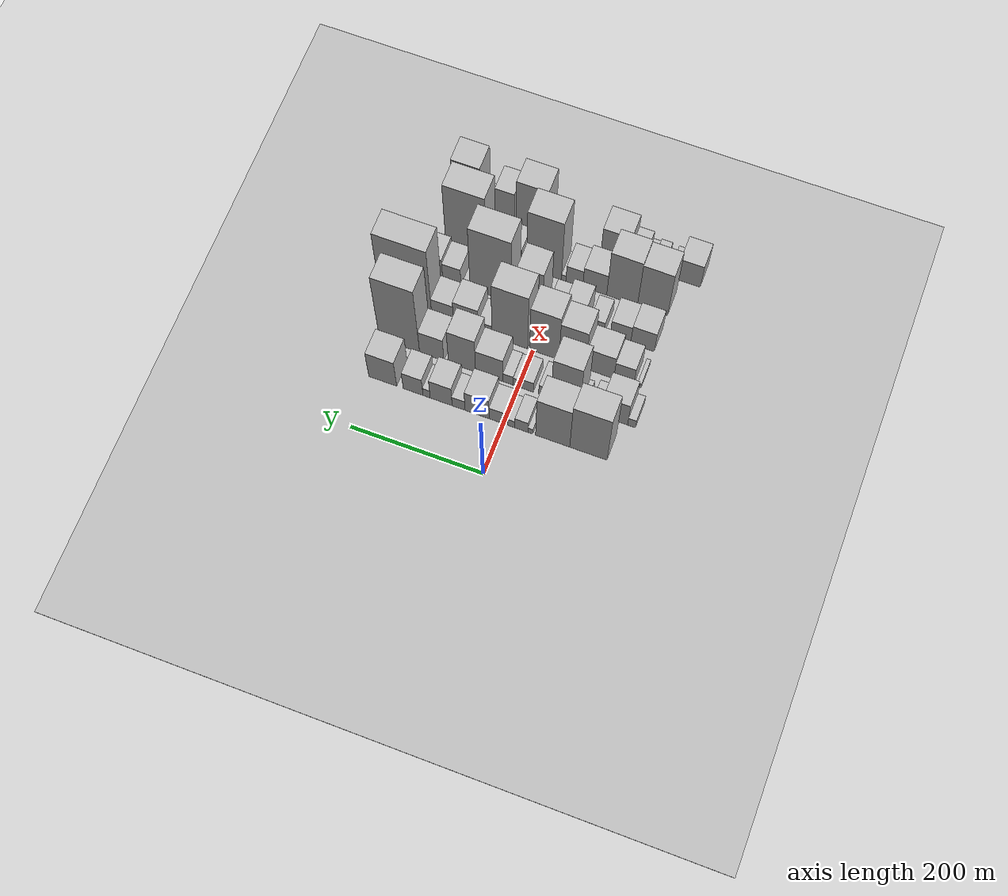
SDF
<sdf version="1.6">
 <world name="default">
  <include><name>ground_plane_1</name><uri>model://HANNAS_ground_plane</uri></include>
  <include>
   <name>ground_plane_2</name>
   <uri>model://HANNAS_ground_plane</uri>
   <pose>100 0 0  0 0 0</pose>
  </include>
  <model name="building_21">
   <static>1</static>
   <pose>100.0000 -127.4191 0 0.000000 0.000000 0.000000</pose>
   <link name="link">
    <pose>0 0 75.00 0 0 0</pose>
    <collision name="collision"><geometry><box><size>40.0000 55.6660 150.0000</size></box></geometry></collision>
    <visual name="visual">
     <cast_shadows>0</cast_shadows>
     <geometry><box><size>40.0000 55.6660 150.0000</size></box></geometry>
     <material>
      <script>
       <uri>model://HANNAS_wall/materials/scripts</uri>
       <uri>model://HANNAS_wall/materials/textures</uri>
       <name>vrc/HANNAS_wall</name>
      </script>
     </material>
    </visual>
   </link>
  </model>
  <model name="building_22">
   <static>1</static>
   <pose>100.0000 -73.9575 0 0.000000 0.000000 0.000000</pose>
   <link name="link">
    <pose>0 0 66.00 0 0 0</pose>
    <collision name="collision"><geometry><box><size>40.0000 51.2572 132.0000</size></box></geometry></collision>
    <visual name="visual">
     <cast_shadows>0</cast_shadows>
     <geometry><box><size>40.0000 51.2572 132.0000</size></box></geometry>
     <material>
      <script>
       <uri>model://HANNAS_wall/materials/scripts</uri>
       <uri>model://HANNAS_wall/materials/textures</uri>
       <name>vrc/HANNAS_wall</name>
      </script>
     </material>
    </visual>
   </link>
  </model>
  <model name="building_23">
   <static>1</static>
   <pose>100.0000 -40.5875 0 0.000000 0.000000 0.000000</pose>
   <link name="link">
    <pose>0 0 9.00 0 0 0</pose>
    <collision name="collision"><geometry><box><size>40.0000 7.4829 18.0000</size></box></geometry></collision>
    <visual name="visual">
     <cast_shadows>0</cast_shadows>
     <geometry><box><size>40.0000 7.4829 18.0000</size></box></geometry>
     <material>
      <script>
       <uri>model://HANNAS_wall/materials/scripts</uri>
       <uri>model://HANNAS_wall/materials/textures</uri>
       <name>vrc/HANNAS_wall</name>
      </script>
     </material>
    </visual>
   </link>
  </model>
  <model name="building_24">
   <static>1</static>
   <pose>100.0000 -26.9328 0 0.000000 0.000000 0.000000</pose>
   <link name="link">
    <pose>0 0 18.00 0 0 0</pose>
    <collision name="collision"><geometry><box><size>40.0000 19.8266 36.0000</size></box></geometry></collision>
    <visual name="visual">
     <cast_shadows>0</cast_shadows>
     <geometry><box><size>40.0000 19.8266 36.0000</size></box></geometry>
     <material>
      <script>
       <uri>model://HANNAS_wall/materials/scripts</uri>
       <uri>model://HANNAS_wall/materials/textures</uri>
       <name>vrc/HANNAS_wall</name>
      </script>
     </material>
    </visual>
   </link>
  </model>
  <model name="building_25">
   <static>1</static>
   <pose>100.0000 -11.7241 0 0.000000 0.000000 0.000000</pose>
   <link name="link">
    <pose>0 0 12.00 0 0 0</pose>
    <collision name="collision"><geometry><box><size>40.0000 10.5908 24.0000</size></box></geometry></collision>
    <visual name="visual">
     <cast_shadows>0</cast_shadows>
     <geometry><box><size>40.0000 10.5908 24.0000</size></box></geometry>
     <material>
      <script>
       <uri>model://HANNAS_wall/materials/scripts</uri>
       <uri>model://HANNAS_wall/materials/textures</uri>
       <name>vrc/HANNAS_wall</name>
      </script>
     </material>
    </visual>
   </link>
  </model>
  <model name="building_26">
   <static>1</static>
   <pose>100.0000 9.6400 0 0.000000 0.000000 0.000000</pose>
   <link name="link">
    <pose>0 0 21.00 0 0 0</pose>
    <collision name="collision"><geometry><box><size>40.0000 24.1373 42.0000</size></box></geometry></collision>
    <visual name="visual">
     <cast_shadows>0</cast_shadows>
     <geometry><box><size>40.0000 24.1373 42.0000</size></box></geometry>
     <material>
      <script>
       <uri>model://HANNAS_wall/materials/scripts</uri>
       <uri>model://HANNAS_wall/materials/textures</uri>
       <name>vrc/HANNAS_wall</name>
      </script>
     </material>
    </visual>
   </link>
  </model>
  <model name="building_27">
   <static>1</static>
   <pose>100.0000 39.9883 0 0.000000 0.000000 0.000000</pose>
   <link name="link">
    <pose>0 0 33.00 0 0 0</pose>
    <collision name="collision"><geometry><box><size>40.0000 36.5592 66.0000</size></box></geometry></collision>
    <visual name="visual">
     <cast_shadows>0</cast_shadows>
     <geometry><box><size>40.0000 36.5592 66.0000</size></box></geometry>
     <material>
      <script>
       <uri>model://HANNAS_wall/materials/scripts</uri>
       <uri>model://HANNAS_wall/materials/textures</uri>
       <name>vrc/HANNAS_wall</name>
      </script>
     </material>
    </visual>
   </link>
  </model>
  <model name="building_28">
   <static>1</static>
   <pose>100.0000 68.1134 0 0.000000 0.000000 0.000000</pose>
   <link name="link">
    <pose>0 0 16.50 0 0 0</pose>
    <collision name="collision"><geometry><box><size>40.0000 19.6911 33.0000</size></box></geometry></collision>
    <visual name="visual">
     <cast_shadows>0</cast_shadows>
     <geometry><box><size>40.0000 19.6911 33.0000</size></box></geometry>
     <material>
      <script>
       <uri>model://HANNAS_wall/materials/scripts</uri>
       <uri>model://HANNAS_wall/materials/textures</uri>
       <name>vrc/HANNAS_wall</name>
      </script>
     </material>
    </visual>
   </link>
  </model>
  <model name="building_29">
   <static>1</static>
   <pose>100.0000 94.6708 0 0.000000 0.000000 0.000000</pose>
   <link name="link">
    <pose>0 0 31.50 0 0 0</pose>
    <collision name="collision"><geometry><box><size>40.0000 33.4237 63.0000</size></box></geometry></collision>
    <visual name="visual">
     <cast_shadows>0</cast_shadows>
     <geometry><box><size>40.0000 33.4237 63.0000</size></box></geometry>
     <material>
      <script>
       <uri>model://HANNAS_wall/materials/scripts</uri>
       <uri>model://HANNAS_wall/materials/textures</uri>
       <name>vrc/HANNAS_wall</name>
      </script>
     </material>
    </visual>
   </link>
  </model>
  <model name="building_30">
   <static>1</static>
   <pose>100.0000 116.8497 0 0.000000 0.000000 0.000000</pose>
   <link name="link">
    <pose>0 0 13.50 0 0 0</pose>
    <collision name="collision"><geometry><box><size>40.0000 10.9341 27.0000</size></box></geometry></collision>
    <visual name="visual">
     <cast_shadows>0</cast_shadows>
     <geometry><box><size>40.0000 10.9341 27.0000</size></box></geometry>
     <material>
      <script>
       <uri>model://HANNAS_wall/materials/scripts</uri>
       <uri>model://HANNAS_wall/materials/textures</uri>
       <name>vrc/HANNAS_wall</name>
      </script>
     </material>
    </visual>
   </link>
  </model>
  <model name="building_31">
   <static>1</static>
   <pose>100.0000 137.4935 0 0.000000 0.000000 0.000000</pose>
   <link name="link">
    <pose>0 0 28.50 0 0 0</pose>
    <collision name="collision"><geometry><box><size>40.0000 30.3534 57.0000</size></box></geometry></collision>
    <visual name="visual">
     <cast_shadows>0</cast_shadows>
     <geometry><box><size>40.0000 30.3534 57.0000</size></box></geometry>
     <material>
      <script>
       <uri>model://HANNAS_wall/materials/scripts</uri>
       <uri>model://HANNAS_wall/materials/textures</uri>
       <name>vrc/HANNAS_wall</name>
      </script>
     </material>
    </visual>
   </link>
  </model>
  <model name="building_32">
   <static>1</static>
   <pose>100.0000 184.0602 0 0.000000 0.000000 0.000000</pose>
   <link name="link">
    <pose>0 0 42.00 0 0 0</pose>
    <collision name="collision"><geometry><box><size>40.0000 42.7801 84.0000</size></box></geometry></collision>
    <visual name="visual">
     <cast_shadows>0</cast_shadows>
     <geometry><box><size>40.0000 42.7801 84.0000</size></box></geometry>
     <material>
      <script>
       <uri>model://HANNAS_wall/materials/scripts</uri>
       <uri>model://HANNAS_wall/materials/textures</uri>
       <name>vrc/HANNAS_wall</name>
      </script>
     </material>
    </visual>
   </link>
  </model>
  <model name="building_78">
   <static>1</static>
   <pose>160.0000 -170.8000 0 0.000000 0.000000 0.000000</pose>
   <link name="link">
    <pose>0 0 13.50 0 0 0</pose>
    <collision name="collision"><geometry><box><size>40.0000 11.9040 27.0000</size></box></geometry></collision>
    <visual name="visual">
     <cast_shadows>0</cast_shadows>
     <geometry><box><size>40.0000 11.9040 27.0000</size></box></geometry>
     <material>
      <script>
       <uri>model://HANNAS_wall/materials/scripts</uri>
       <uri>model://HANNAS_wall/materials/textures</uri>
       <name>vrc/HANNAS_wall</name>
      </script>
     </material>
    </visual>
   </link>
  </model>
  <model name="building_79">
   <static>1</static>
   <pose>160.0000 -144.9839 0 0.000000 0.000000 0.000000</pose>
   <link name="link">
    <pose>0 0 36.00 0 0 0</pose>
    <collision name="collision"><geometry><box><size>40.0000 39.7282 72.0000</size></box></geometry></collision>
    <visual name="visual">
     <cast_shadows>0</cast_shadows>
     <geometry><box><size>40.0000 39.7282 72.0000</size></box></geometry>
     <material>
      <script>
       <uri>model://HANNAS_wall/materials/scripts</uri>
       <uri>model://HANNAS_wall/materials/textures</uri>
       <name>vrc/HANNAS_wall</name>
      </script>
     </material>
    </visual>
   </link>
  </model>
  <model name="building_80">
   <static>1</static>
   <pose>160.0000 -117.1032 0 0.000000 0.000000 0.000000</pose>
   <link name="link">
    <pose>0 0 15.00 0 0 0</pose>
    <collision name="collision"><geometry><box><size>40.0000 16.0333 30.0000</size></box></geometry></collision>
    <visual name="visual">
     <cast_shadows>0</cast_shadows>
     <geometry><box><size>40.0000 16.0333 30.0000</size></box></geometry>
     <material>
      <script>
       <uri>model://HANNAS_wall/materials/scripts</uri>
       <uri>model://HANNAS_wall/materials/textures</uri>
       <name>vrc/HANNAS_wall</name>
      </script>
     </material>
    </visual>
   </link>
  </model>
  <model name="building_81">
   <static>1</static>
   <pose>160.0000 -97.2565 0 0.000000 0.000000 0.000000</pose>
   <link name="link">
    <pose>0 0 9.00 0 0 0</pose>
    <collision name="collision"><geometry><box><size>40.0000 7.6601 18.0000</size></box></geometry></collision>
    <visual name="visual">
     <cast_shadows>0</cast_shadows>
     <geometry><box><size>40.0000 7.6601 18.0000</size></box></geometry>
     <material>
      <script>
       <uri>model://HANNAS_wall/materials/scripts</uri>
       <uri>model://HANNAS_wall/materials/textures</uri>
       <name>vrc/HANNAS_wall</name>
      </script>
     </material>
    </visual>
   </link>
  </model>
  <model name="building_82">
   <static>1</static>
   <pose>160.0000 -71.5598 0 0.000000 0.000000 0.000000</pose>
   <link name="link">
    <pose>0 0 69.00 0 0 0</pose>
    <collision name="collision"><geometry><box><size>40.0000 43.7333 138.0000</size></box></geometry></collision>
    <visual name="visual">
     <cast_shadows>0</cast_shadows>
     <geometry><box><size>40.0000 43.7333 138.0000</size></box></geometry>
     <material>
      <script>
       <uri>model://HANNAS_wall/materials/scripts</uri>
       <uri>model://HANNAS_wall/materials/textures</uri>
       <name>vrc/HANNAS_wall</name>
      </script>
     </material>
    </visual>
   </link>
  </model>
  <model name="building_83">
   <static>1</static>
   <pose>160.0000 -40.2590 0 0.000000 0.000000 0.000000</pose>
   <link name="link">
    <pose>0 0 16.50 0 0 0</pose>
    <collision name="collision"><geometry><box><size>40.0000 18.8683 33.0000</size></box></geometry></collision>
    <visual name="visual">
     <cast_shadows>0</cast_shadows>
     <geometry><box><size>40.0000 18.8683 33.0000</size></box></geometry>
     <material>
      <script>
       <uri>model://HANNAS_wall/materials/scripts</uri>
       <uri>model://HANNAS_wall/materials/textures</uri>
       <name>vrc/HANNAS_wall</name>
      </script>
     </material>
    </visual>
   </link>
  </model>
  <model name="building_84">
   <static>1</static>
   <pose>160.0000 -13.8541 0 0.000000 0.000000 0.000000</pose>
   <link name="link">
    <pose>0 0 16.50 0 0 0</pose>
    <collision name="collision"><geometry><box><size>40.0000 17.9415 33.0000</size></box></geometry></collision>
    <visual name="visual">
     <cast_shadows>0</cast_shadows>
     <geometry><box><size>40.0000 17.9415 33.0000</size></box></geometry>
     <material>
      <script>
       <uri>model://HANNAS_wall/materials/scripts</uri>
       <uri>model://HANNAS_wall/materials/textures</uri>
       <name>vrc/HANNAS_wall</name>
      </script>
     </material>
    </visual>
   </link>
  </model>
  <model name="building_85">
   <static>1</static>
   <pose>160.0000 1.4937 0 0.000000 0.000000 0.000000</pose>
   <link name="link">
    <pose>0 0 13.50 0 0 0</pose>
    <collision name="collision"><geometry><box><size>40.0000 12.7541 27.0000</size></box></geometry></collision>
    <visual name="visual">
     <cast_shadows>0</cast_shadows>
     <geometry><box><size>40.0000 12.7541 27.0000</size></box></geometry>
     <material>
      <script>
       <uri>model://HANNAS_wall/materials/scripts</uri>
       <uri>model://HANNAS_wall/materials/textures</uri>
       <name>vrc/HANNAS_wall</name>
      </script>
     </material>
    </visual>
   </link>
  </model>
  <model name="building_86">
   <static>1</static>
   <pose>160.0000 15.6966 0 0.000000 0.000000 0.000000</pose>
   <link name="link">
    <pose>0 0 15.00 0 0 0</pose>
    <collision name="collision"><geometry><box><size>40.0000 15.6517 30.0000</size></box></geometry></collision>
    <visual name="visual">
     <cast_shadows>0</cast_shadows>
     <geometry><box><size>40.0000 15.6517 30.0000</size></box></geometry>
     <material>
      <script>
       <uri>model://HANNAS_wall/materials/scripts</uri>
       <uri>model://HANNAS_wall/materials/textures</uri>
       <name>vrc/HANNAS_wall</name>
      </script>
     </material>
    </visual>
   </link>
  </model>
  <model name="building_87">
   <static>1</static>
   <pose>160.0000 44.4068 0 0.000000 0.000000 0.000000</pose>
   <link name="link">
    <pose>0 0 37.50 0 0 0</pose>
    <collision name="collision"><geometry><box><size>40.0000 41.7687 75.0000</size></box></geometry></collision>
    <visual name="visual">
     <cast_shadows>0</cast_shadows>
     <geometry><box><size>40.0000 41.7687 75.0000</size></box></geometry>
     <material>
      <script>
       <uri>model://HANNAS_wall/materials/scripts</uri>
       <uri>model://HANNAS_wall/materials/textures</uri>
       <name>vrc/HANNAS_wall</name>
      </script>
     </material>
    </visual>
   </link>
  </model>
  <model name="building_88">
   <static>1</static>
   <pose>160.0000 86.0982 0 0.000000 0.000000 0.000000</pose>
   <link name="link">
    <pose>0 0 54.00 0 0 0</pose>
    <collision name="collision"><geometry><box><size>40.0000 41.6142 108.0000</size></box></geometry></collision>
    <visual name="visual">
     <cast_shadows>0</cast_shadows>
     <geometry><box><size>40.0000 41.6142 108.0000</size></box></geometry>
     <material>
      <script>
       <uri>model://HANNAS_wall/materials/scripts</uri>
       <uri>model://HANNAS_wall/materials/textures</uri>
       <name>vrc/HANNAS_wall</name>
      </script>
     </material>
    </visual>
   </link>
  </model>
  <model name="building_89">
   <static>1</static>
   <pose>160.0000 132.6136 0 0.000000 0.000000 0.000000</pose>
   <link name="link">
    <pose>0 0 36.00 0 0 0</pose>
    <collision name="collision"><geometry><box><size>40.0000 37.4164 72.0000</size></box></geometry></collision>
    <visual name="visual">
     <cast_shadows>0</cast_shadows>
     <geometry><box><size>40.0000 37.4164 72.0000</size></box></geometry>
     <material>
      <script>
       <uri>model://HANNAS_wall/materials/scripts</uri>
       <uri>model://HANNAS_wall/materials/textures</uri>
       <name>vrc/HANNAS_wall</name>
      </script>
     </material>
    </visual>
   </link>
  </model>
  <model name="building_90">
   <static>1</static>
   <pose>160.0000 182.4651 0 0.000000 0.000000 0.000000</pose>
   <link name="link">
    <pose>0 0 102.00 0 0 0</pose>
    <collision name="collision"><geometry><box><size>40.0000 62.2866 204.0000</size></box></geometry></collision>
    <visual name="visual">
     <cast_shadows>0</cast_shadows>
     <geometry><box><size>40.0000 62.2866 204.0000</size></box></geometry>
     <material>
      <script>
       <uri>model://HANNAS_wall/materials/scripts</uri>
       <uri>model://HANNAS_wall/materials/textures</uri>
       <name>vrc/HANNAS_wall</name>
      </script>
     </material>
    </visual>
   </link>
  </model>
  <model name="building_134">
   <static>1</static>
   <pose>220.0000 -161.3932 0 0.000000 0.000000 0.000000</pose>
   <link name="link">
    <pose>0 0 7.50 0 0 0</pose>
    <collision name="collision"><geometry><box><size>40.0000 6.2024 15.0000</size></box></geometry></collision>
    <visual name="visual">
     <cast_shadows>0</cast_shadows>
     <geometry><box><size>40.0000 6.2024 15.0000</size></box></geometry>
     <material>
      <script>
       <uri>model://HANNAS_wall/materials/scripts</uri>
       <uri>model://HANNAS_wall/materials/textures</uri>
       <name>vrc/HANNAS_wall</name>
      </script>
     </material>
    </visual>
   </link>
  </model>
  <model name="building_135">
   <static>1</static>
   <pose>220.0000 -138.2459 0 0.000000 0.000000 0.000000</pose>
   <link name="link">
    <pose>0 0 28.50 0 0 0</pose>
    <collision name="collision"><geometry><box><size>40.0000 30.0921 57.0000</size></box></geometry></collision>
    <visual name="visual">
     <cast_shadows>0</cast_shadows>
     <geometry><box><size>40.0000 30.0921 57.0000</size></box></geometry>
     <material>
      <script>
       <uri>model://HANNAS_wall/materials/scripts</uri>
       <uri>model://HANNAS_wall/materials/textures</uri>
       <name>vrc/HANNAS_wall</name>
      </script>
     </material>
    </visual>
   </link>
  </model>
  <model name="building_136">
   <static>1</static>
   <pose>220.0000 -101.9240 0 0.000000 0.000000 0.000000</pose>
   <link name="link">
    <pose>0 0 36.00 0 0 0</pose>
    <collision name="collision"><geometry><box><size>40.0000 42.5516 72.0000</size></box></geometry></collision>
    <visual name="visual">
     <cast_shadows>0</cast_shadows>
     <geometry><box><size>40.0000 42.5516 72.0000</size></box></geometry>
     <material>
      <script>
       <uri>model://HANNAS_wall/materials/scripts</uri>
       <uri>model://HANNAS_wall/materials/textures</uri>
       <name>vrc/HANNAS_wall</name>
      </script>
     </material>
    </visual>
   </link>
  </model>
  <model name="building_137">
   <static>1</static>
   <pose>220.0000 -60.1918 0 0.000000 0.000000 0.000000</pose>
   <link name="link">
    <pose>0 0 61.50 0 0 0</pose>
    <collision name="collision"><geometry><box><size>40.0000 40.9128 123.0000</size></box></geometry></collision>
    <visual name="visual">
     <cast_shadows>0</cast_shadows>
     <geometry><box><size>40.0000 40.9128 123.0000</size></box></geometry>
     <material>
      <script>
       <uri>model://HANNAS_wall/materials/scripts</uri>
       <uri>model://HANNAS_wall/materials/textures</uri>
       <name>vrc/HANNAS_wall</name>
      </script>
     </material>
    </visual>
   </link>
  </model>
  <model name="building_138">
   <static>1</static>
   <pose>220.0000 -17.2927 0 0.000000 0.000000 0.000000</pose>
   <link name="link">
    <pose>0 0 70.50 0 0 0</pose>
    <collision name="collision"><geometry><box><size>40.0000 44.8854 141.0000</size></box></geometry></collision>
    <visual name="visual">
     <cast_shadows>0</cast_shadows>
     <geometry><box><size>40.0000 44.8854 141.0000</size></box></geometry>
     <material>
      <script>
       <uri>model://HANNAS_wall/materials/scripts</uri>
       <uri>model://HANNAS_wall/materials/textures</uri>
       <name>vrc/HANNAS_wall</name>
      </script>
     </material>
    </visual>
   </link>
  </model>
  <model name="building_139">
   <static>1</static>
   <pose>220.0000 35.6297 0 0.000000 0.000000 0.000000</pose>
   <link name="link">
    <pose>0 0 85.50 0 0 0</pose>
    <collision name="collision"><geometry><box><size>40.0000 54.9594 171.0000</size></box></geometry></collision>
    <visual name="visual">
     <cast_shadows>0</cast_shadows>
     <geometry><box><size>40.0000 54.9594 171.0000</size></box></geometry>
     <material>
      <script>
       <uri>model://HANNAS_wall/materials/scripts</uri>
       <uri>model://HANNAS_wall/materials/textures</uri>
       <name>vrc/HANNAS_wall</name>
      </script>
     </material>
    </visual>
   </link>
  </model>
  <model name="building_140">
   <static>1</static>
   <pose>220.0000 73.6022 0 0.000000 0.000000 0.000000</pose>
   <link name="link">
    <pose>0 0 18.00 0 0 0</pose>
    <collision name="collision"><geometry><box><size>40.0000 20.9855 36.0000</size></box></geometry></collision>
    <visual name="visual">
     <cast_shadows>0</cast_shadows>
     <geometry><box><size>40.0000 20.9855 36.0000</size></box></geometry>
     <material>
      <script>
       <uri>model://HANNAS_wall/materials/scripts</uri>
       <uri>model://HANNAS_wall/materials/textures</uri>
       <name>vrc/HANNAS_wall</name>
      </script>
     </material>
    </visual>
   </link>
  </model>
  <model name="building_141">
   <static>1</static>
   <pose>220.0000 103.2576 0 0.000000 0.000000 0.000000</pose>
   <link name="link">
    <pose>0 0 36.00 0 0 0</pose>
    <collision name="collision"><geometry><box><size>40.0000 38.3254 72.0000</size></box></geometry></collision>
    <visual name="visual">
     <cast_shadows>0</cast_shadows>
     <geometry><box><size>40.0000 38.3254 72.0000</size></box></geometry>
     <material>
      <script>
       <uri>model://HANNAS_wall/materials/scripts</uri>
       <uri>model://HANNAS_wall/materials/textures</uri>
       <name>vrc/HANNAS_wall</name>
      </script>
     </material>
    </visual>
   </link>
  </model>
  <model name="building_142">
   <static>1</static>
   <pose>220.0000 139.2940 0 0.000000 0.000000 0.000000</pose>
   <link name="link">
    <pose>0 0 28.50 0 0 0</pose>
    <collision name="collision"><geometry><box><size>40.0000 33.7474 57.0000</size></box></geometry></collision>
    <visual name="visual">
     <cast_shadows>0</cast_shadows>
     <geometry><box><size>40.0000 33.7474 57.0000</size></box></geometry>
     <material>
      <script>
       <uri>model://HANNAS_wall/materials/scripts</uri>
       <uri>model://HANNAS_wall/materials/textures</uri>
       <name>vrc/HANNAS_wall</name>
      </script>
     </material>
    </visual>
   </link>
  </model>
  <model name="building_143">
   <static>1</static>
   <pose>220.0000 195.9725 0 0.000000 0.000000 0.000000</pose>
   <link name="link">
    <pose>0 0 103.50 0 0 0</pose>
    <collision name="collision"><geometry><box><size>40.0000 79.6094 207.0000</size></box></geometry></collision>
    <visual name="visual">
     <cast_shadows>0</cast_shadows>
     <geometry><box><size>40.0000 79.6094 207.0000</size></box></geometry>
     <material>
      <script>
       <uri>model://HANNAS_wall/materials/scripts</uri>
       <uri>model://HANNAS_wall/materials/textures</uri>
       <name>vrc/HANNAS_wall</name>
      </script>
     </material>
    </visual>
   </link>
  </model>
  <model name="building_191">
   <static>1</static>
   <pose>280.0000 -145.4875 0 0.000000 0.000000 0.000000</pose>
   <link name="link">
    <pose>0 0 30.00 0 0 0</pose>
    <collision name="collision"><geometry><box><size>40.0000 35.9783 60.0000</size></box></geometry></collision>
    <visual name="visual">
     <cast_shadows>0</cast_shadows>
     <geometry><box><size>40.0000 35.9783 60.0000</size></box></geometry>
     <material>
      <script>
       <uri>model://HANNAS_wall/materials/scripts</uri>
       <uri>model://HANNAS_wall/materials/textures</uri>
       <name>vrc/HANNAS_wall</name>
      </script>
     </material>
    </visual>
   </link>
  </model>
  <model name="building_192">
   <static>1</static>
   <pose>280.0000 -111.8496 0 0.000000 0.000000 0.000000</pose>
   <link name="link">
    <pose>0 0 27.00 0 0 0</pose>
    <collision name="collision"><geometry><box><size>40.0000 31.2976 54.0000</size></box></geometry></collision>
    <visual name="visual">
     <cast_shadows>0</cast_shadows>
     <geometry><box><size>40.0000 31.2976 54.0000</size></box></geometry>
     <material>
      <script>
       <uri>model://HANNAS_wall/materials/scripts</uri>
       <uri>model://HANNAS_wall/materials/textures</uri>
       <name>vrc/HANNAS_wall</name>
      </script>
     </material>
    </visual>
   </link>
  </model>
  <model name="building_193">
   <static>1</static>
   <pose>280.0000 -75.9148 0 0.000000 0.000000 0.000000</pose>
   <link name="link">
    <pose>0 0 19.50 0 0 0</pose>
    <collision name="collision"><geometry><box><size>40.0000 22.5719 39.0000</size></box></geometry></collision>
    <visual name="visual">
     <cast_shadows>0</cast_shadows>
     <geometry><box><size>40.0000 22.5719 39.0000</size></box></geometry>
     <material>
      <script>
       <uri>model://HANNAS_wall/materials/scripts</uri>
       <uri>model://HANNAS_wall/materials/textures</uri>
       <name>vrc/HANNAS_wall</name>
      </script>
     </material>
    </visual>
   </link>
  </model>
  <model name="building_194">
   <static>1</static>
   <pose>280.0000 -41.6241 0 0.000000 0.000000 0.000000</pose>
   <link name="link">
    <pose>0 0 31.50 0 0 0</pose>
    <collision name="collision"><geometry><box><size>40.0000 32.0095 63.0000</size></box></geometry></collision>
    <visual name="visual">
     <cast_shadows>0</cast_shadows>
     <geometry><box><size>40.0000 32.0095 63.0000</size></box></geometry>
     <material>
      <script>
       <uri>model://HANNAS_wall/materials/scripts</uri>
       <uri>model://HANNAS_wall/materials/textures</uri>
       <name>vrc/HANNAS_wall</name>
      </script>
     </material>
    </visual>
   </link>
  </model>
  <model name="building_195">
   <static>1</static>
   <pose>280.0000 -13.4943 0 0.000000 0.000000 0.000000</pose>
   <link name="link">
    <pose>0 0 22.50 0 0 0</pose>
    <collision name="collision"><geometry><box><size>40.0000 24.2502 45.0000</size></box></geometry></collision>
    <visual name="visual">
     <cast_shadows>0</cast_shadows>
     <geometry><box><size>40.0000 24.2502 45.0000</size></box></geometry>
     <material>
      <script>
       <uri>model://HANNAS_wall/materials/scripts</uri>
       <uri>model://HANNAS_wall/materials/textures</uri>
       <name>vrc/HANNAS_wall</name>
      </script>
     </material>
    </visual>
   </link>
  </model>
  <model name="building_196">
   <static>1</static>
   <pose>280.0000 27.4544 0 0.000000 0.000000 0.000000</pose>
   <link name="link">
    <pose>0 0 63.00 0 0 0</pose>
    <collision name="collision"><geometry><box><size>40.0000 39.6472 126.0000</size></box></geometry></collision>
    <visual name="visual">
     <cast_shadows>0</cast_shadows>
     <geometry><box><size>40.0000 39.6472 126.0000</size></box></geometry>
     <material>
      <script>
       <uri>model://HANNAS_wall/materials/scripts</uri>
       <uri>model://HANNAS_wall/materials/textures</uri>
       <name>vrc/HANNAS_wall</name>
      </script>
     </material>
    </visual>
   </link>
  </model>
  <model name="building_197">
   <static>1</static>
   <pose>280.0000 88.1581 0 0.000000 0.000000 0.000000</pose>
   <link name="link">
    <pose>0 0 96.00 0 0 0</pose>
    <collision name="collision"><geometry><box><size>40.0000 63.7603 192.0000</size></box></geometry></collision>
    <visual name="visual">
     <cast_shadows>0</cast_shadows>
     <geometry><box><size>40.0000 63.7603 192.0000</size></box></geometry>
     <material>
      <script>
       <uri>model://HANNAS_wall/materials/scripts</uri>
       <uri>model://HANNAS_wall/materials/textures</uri>
       <name>vrc/HANNAS_wall</name>
      </script>
     </material>
    </visual>
   </link>
  </model>
  <model name="building_198">
   <static>1</static>
   <pose>280.0000 125.1183 0 0.000000 0.000000 0.000000</pose>
   <link name="link">
    <pose>0 0 10.50 0 0 0</pose>
    <collision name="collision"><geometry><box><size>40.0000 10.1603 21.0000</size></box></geometry></collision>
    <visual name="visual">
     <cast_shadows>0</cast_shadows>
     <geometry><box><size>40.0000 10.1603 21.0000</size></box></geometry>
     <material>
      <script>
       <uri>model://HANNAS_wall/materials/scripts</uri>
       <uri>model://HANNAS_wall/materials/textures</uri>
       <name>vrc/HANNAS_wall</name>
      </script>
     </material>
    </visual>
   </link>
  </model>
  <model name="building_199">
   <static>1</static>
   <pose>280.0000 148.5143 0 0.000000 0.000000 0.000000</pose>
   <link name="link">
    <pose>0 0 25.50 0 0 0</pose>
    <collision name="collision"><geometry><box><size>40.0000 28.6316 51.0000</size></box></geometry></collision>
    <visual name="visual">
     <cast_shadows>0</cast_shadows>
     <geometry><box><size>40.0000 28.6316 51.0000</size></box></geometry>
     <material>
      <script>
       <uri>model://HANNAS_wall/materials/scripts</uri>
       <uri>model://HANNAS_wall/materials/textures</uri>
       <name>vrc/HANNAS_wall</name>
      </script>
     </material>
    </visual>
   </link>
  </model>
  <model name="building_200">
   <static>1</static>
   <pose>280.0000 180.7329 0 0.000000 0.000000 0.000000</pose>
   <link name="link">
    <pose>0 0 31.50 0 0 0</pose>
    <collision name="collision"><geometry><box><size>40.0000 35.8056 63.0000</size></box></geometry></collision>
    <visual name="visual">
     <cast_shadows>0</cast_shadows>
     <geometry><box><size>40.0000 35.8056 63.0000</size></box></geometry>
     <material>
      <script>
       <uri>model://HANNAS_wall/materials/scripts</uri>
       <uri>model://HANNAS_wall/materials/textures</uri>
       <name>vrc/HANNAS_wall</name>
      </script>
     </material>
    </visual>
   </link>
  </model>
  <model name="building_247">
   <static>1</static>
   <pose>340.0000 -140.1308 0 0.000000 0.000000 0.000000</pose>
   <link name="link">
    <pose>0 0 66.00 0 0 0</pose>
    <collision name="collision"><geometry><box><size>40.0000 46.1117 132.0000</size></box></geometry></collision>
    <visual name="visual">
     <cast_shadows>0</cast_shadows>
     <geometry><box><size>40.0000 46.1117 132.0000</size></box></geometry>
     <material>
      <script>
       <uri>model://HANNAS_wall/materials/scripts</uri>
       <uri>model://HANNAS_wall/materials/textures</uri>
       <name>vrc/HANNAS_wall</name>
      </script>
     </material>
    </visual>
   </link>
  </model>
  <model name="building_248">
   <static>1</static>
   <pose>340.0000 -93.4001 0 0.000000 0.000000 0.000000</pose>
   <link name="link">
    <pose>0 0 69.00 0 0 0</pose>
    <collision name="collision"><geometry><box><size>40.0000 47.3497 138.0000</size></box></geometry></collision>
    <visual name="visual">
     <cast_shadows>0</cast_shadows>
     <geometry><box><size>40.0000 47.3497 138.0000</size></box></geometry>
     <material>
      <script>
       <uri>model://HANNAS_wall/materials/scripts</uri>
       <uri>model://HANNAS_wall/materials/textures</uri>
       <name>vrc/HANNAS_wall</name>
      </script>
     </material>
    </visual>
   </link>
  </model>
  <model name="building_249">
   <static>1</static>
   <pose>340.0000 -51.3001 0 0.000000 0.000000 0.000000</pose>
   <link name="link">
    <pose>0 0 31.50 0 0 0</pose>
    <collision name="collision"><geometry><box><size>40.0000 36.8504 63.0000</size></box></geometry></collision>
    <visual name="visual">
     <cast_shadows>0</cast_shadows>
     <geometry><box><size>40.0000 36.8504 63.0000</size></box></geometry>
     <material>
      <script>
       <uri>model://HANNAS_wall/materials/scripts</uri>
       <uri>model://HANNAS_wall/materials/textures</uri>
       <name>vrc/HANNAS_wall</name>
      </script>
     </material>
    </visual>
   </link>
  </model>
  <model name="building_250">
   <static>1</static>
   <pose>340.0000 -19.8431 0 0.000000 0.000000 0.000000</pose>
   <link name="link">
    <pose>0 0 25.50 0 0 0</pose>
    <collision name="collision"><geometry><box><size>40.0000 26.0637 51.0000</size></box></geometry></collision>
    <visual name="visual">
     <cast_shadows>0</cast_shadows>
     <geometry><box><size>40.0000 26.0637 51.0000</size></box></geometry>
     <material>
      <script>
       <uri>model://HANNAS_wall/materials/scripts</uri>
       <uri>model://HANNAS_wall/materials/textures</uri>
       <name>vrc/HANNAS_wall</name>
      </script>
     </material>
    </visual>
   </link>
  </model>
  <model name="building_251">
   <static>1</static>
   <pose>340.0000 -3.1830 0 0.000000 0.000000 0.000000</pose>
   <link name="link">
    <pose>0 0 9.00 0 0 0</pose>
    <collision name="collision"><geometry><box><size>40.0000 7.2565 18.0000</size></box></geometry></collision>
    <visual name="visual">
     <cast_shadows>0</cast_shadows>
     <geometry><box><size>40.0000 7.2565 18.0000</size></box></geometry>
     <material>
      <script>
       <uri>model://HANNAS_wall/materials/scripts</uri>
       <uri>model://HANNAS_wall/materials/textures</uri>
       <name>vrc/HANNAS_wall</name>
      </script>
     </material>
    </visual>
   </link>
  </model>
  <model name="building_252">
   <static>1</static>
   <pose>340.0000 27.5002 0 0.000000 0.000000 0.000000</pose>
   <link name="link">
    <pose>0 0 88.50 0 0 0</pose>
    <collision name="collision"><geometry><box><size>40.0000 54.1099 177.0000</size></box></geometry></collision>
    <visual name="visual">
     <cast_shadows>0</cast_shadows>
     <geometry><box><size>40.0000 54.1099 177.0000</size></box></geometry>
     <material>
      <script>
       <uri>model://HANNAS_wall/materials/scripts</uri>
       <uri>model://HANNAS_wall/materials/textures</uri>
       <name>vrc/HANNAS_wall</name>
      </script>
     </material>
    </visual>
   </link>
  </model>
  <model name="building_253">
   <static>1</static>
   <pose>340.0000 75.3381 0 0.000000 0.000000 0.000000</pose>
   <link name="link">
    <pose>0 0 25.50 0 0 0</pose>
    <collision name="collision"><geometry><box><size>40.0000 25.5659 51.0000</size></box></geometry></collision>
    <visual name="visual">
     <cast_shadows>0</cast_shadows>
     <geometry><box><size>40.0000 25.5659 51.0000</size></box></geometry>
     <material>
      <script>
       <uri>model://HANNAS_wall/materials/scripts</uri>
       <uri>model://HANNAS_wall/materials/textures</uri>
       <name>vrc/HANNAS_wall</name>
      </script>
     </material>
    </visual>
   </link>
  </model>
  <model name="building_254">
   <static>1</static>
   <pose>340.0000 100.2117 0 0.000000 0.000000 0.000000</pose>
   <link name="link">
    <pose>0 0 24.00 0 0 0</pose>
    <collision name="collision"><geometry><box><size>40.0000 24.1813 48.0000</size></box></geometry></collision>
    <visual name="visual">
     <cast_shadows>0</cast_shadows>
     <geometry><box><size>40.0000 24.1813 48.0000</size></box></geometry>
     <material>
      <script>
       <uri>model://HANNAS_wall/materials/scripts</uri>
       <uri>model://HANNAS_wall/materials/textures</uri>
       <name>vrc/HANNAS_wall</name>
      </script>
     </material>
    </visual>
   </link>
  </model>
  <model name="building_255">
   <static>1</static>
   <pose>340.0000 149.9821 0 0.000000 0.000000 0.000000</pose>
   <link name="link">
    <pose>0 0 85.50 0 0 0</pose>
    <collision name="collision"><geometry><box><size>40.0000 63.3597 171.0000</size></box></geometry></collision>
    <visual name="visual">
     <cast_shadows>0</cast_shadows>
     <geometry><box><size>40.0000 63.3597 171.0000</size></box></geometry>
     <material>
      <script>
       <uri>model://HANNAS_wall/materials/scripts</uri>
       <uri>model://HANNAS_wall/materials/textures</uri>
       <name>vrc/HANNAS_wall</name>
      </script>
     </material>
    </visual>
   </link>
  </model>
  <model name="building_297">
   <static>1</static>
   <pose>400.0000 -175.2733 0 0.000000 0.000000 0.000000</pose>
   <link name="link">
    <pose>0 0 33.00 0 0 0</pose>
    <collision name="collision"><geometry><box><size>40.0000 35.8112 66.0000</size></box></geometry></collision>
    <visual name="visual">
     <cast_shadows>0</cast_shadows>
     <geometry><box><size>40.0000 35.8112 66.0000</size></box></geometry>
     <material>
      <script>
       <uri>model://HANNAS_wall/materials/scripts</uri>
       <uri>model://HANNAS_wall/materials/textures</uri>
       <name>vrc/HANNAS_wall</name>
      </script>
     </material>
    </visual>
   </link>
  </model>
  <model name="building_298">
   <static>1</static>
   <pose>400.0000 -151.4663 0 0.000000 0.000000 0.000000</pose>
   <link name="link">
    <pose>0 0 13.50 0 0 0</pose>
    <collision name="collision"><geometry><box><size>40.0000 11.8029 27.0000</size></box></geometry></collision>
    <visual name="visual">
     <cast_shadows>0</cast_shadows>
     <geometry><box><size>40.0000 11.8029 27.0000</size></box></geometry>
     <material>
      <script>
       <uri>model://HANNAS_wall/materials/scripts</uri>
       <uri>model://HANNAS_wall/materials/textures</uri>
       <name>vrc/HANNAS_wall</name>
      </script>
     </material>
    </visual>
   </link>
  </model>
  <model name="building_299">
   <static>1</static>
   <pose>400.0000 -126.9731 0 0.000000 0.000000 0.000000</pose>
   <link name="link">
    <pose>0 0 15.00 0 0 0</pose>
    <collision name="collision"><geometry><box><size>40.0000 17.1834 30.0000</size></box></geometry></collision>
    <visual name="visual">
     <cast_shadows>0</cast_shadows>
     <geometry><box><size>40.0000 17.1834 30.0000</size></box></geometry>
     <material>
      <script>
       <uri>model://HANNAS_wall/materials/scripts</uri>
       <uri>model://HANNAS_wall/materials/textures</uri>
       <name>vrc/HANNAS_wall</name>
      </script>
     </material>
    </visual>
   </link>
  </model>
  <model name="building_300">
   <static>1</static>
   <pose>400.0000 -112.3834 0 0.000000 0.000000 0.000000</pose>
   <link name="link">
    <pose>0 0 12.00 0 0 0</pose>
    <collision name="collision"><geometry><box><size>40.0000 11.9960 24.0000</size></box></geometry></collision>
    <visual name="visual">
     <cast_shadows>0</cast_shadows>
     <geometry><box><size>40.0000 11.9960 24.0000</size></box></geometry>
     <material>
      <script>
       <uri>model://HANNAS_wall/materials/scripts</uri>
       <uri>model://HANNAS_wall/materials/textures</uri>
       <name>vrc/HANNAS_wall</name>
      </script>
     </material>
    </visual>
   </link>
  </model>
  <model name="building_301">
   <static>1</static>
   <pose>400.0000 -94.6836 0 0.000000 0.000000 0.000000</pose>
   <link name="link">
    <pose>0 0 22.50 0 0 0</pose>
    <collision name="collision"><geometry><box><size>40.0000 23.4036 45.0000</size></box></geometry></collision>
    <visual name="visual">
     <cast_shadows>0</cast_shadows>
     <geometry><box><size>40.0000 23.4036 45.0000</size></box></geometry>
     <material>
      <script>
       <uri>model://HANNAS_wall/materials/scripts</uri>
       <uri>model://HANNAS_wall/materials/textures</uri>
       <name>vrc/HANNAS_wall</name>
      </script>
     </material>
    </visual>
   </link>
  </model>
  <model name="building_302">
   <static>1</static>
   <pose>400.0000 -61.2892 0 0.000000 0.000000 0.000000</pose>
   <link name="link">
    <pose>0 0 40.50 0 0 0</pose>
    <collision name="collision"><geometry><box><size>40.0000 43.3853 81.0000</size></box></geometry></collision>
    <visual name="visual">
     <cast_shadows>0</cast_shadows>
     <geometry><box><size>40.0000 43.3853 81.0000</size></box></geometry>
     <material>
      <script>
       <uri>model://HANNAS_wall/materials/scripts</uri>
       <uri>model://HANNAS_wall/materials/textures</uri>
       <name>vrc/HANNAS_wall</name>
      </script>
     </material>
    </visual>
   </link>
  </model>
  <model name="building_303">
   <static>1</static>
   <pose>400.0000 68.8120 0 0.000000 0.000000 0.000000</pose>
   <link name="link">
    <pose>0 0 67.50 0 0 0</pose>
    <collision name="collision"><geometry><box><size>40.0000 48.9390 135.0000</size></box></geometry></collision>
    <visual name="visual">
     <cast_shadows>0</cast_shadows>
     <geometry><box><size>40.0000 48.9390 135.0000</size></box></geometry>
     <material>
      <script>
       <uri>model://HANNAS_wall/materials/scripts</uri>
       <uri>model://HANNAS_wall/materials/textures</uri>
       <name>vrc/HANNAS_wall</name>
      </script>
     </material>
    </visual>
   </link>
  </model>
  <model name="building_304">
   <static>1</static>
   <pose>400.0000 111.3898 0 0.000000 0.000000 0.000000</pose>
   <link name="link">
    <pose>0 0 46.50 0 0 0</pose>
    <collision name="collision"><geometry><box><size>40.0000 30.2166 93.0000</size></box></geometry></collision>
    <visual name="visual">
     <cast_shadows>0</cast_shadows>
     <geometry><box><size>40.0000 30.2166 93.0000</size></box></geometry>
     <material>
      <script>
       <uri>model://HANNAS_wall/materials/scripts</uri>
       <uri>model://HANNAS_wall/materials/textures</uri>
       <name>vrc/HANNAS_wall</name>
      </script>
     </material>
    </visual>
   </link>
  </model>
  <model name="building_305">
   <static>1</static>
   <pose>400.0000 130.0844 0 0.000000 0.000000 0.000000</pose>
   <link name="link">
    <pose>0 0 7.50 0 0 0</pose>
    <collision name="collision"><geometry><box><size>40.0000 7.1725 15.0000</size></box></geometry></collision>
    <visual name="visual">
     <cast_shadows>0</cast_shadows>
     <geometry><box><size>40.0000 7.1725 15.0000</size></box></geometry>
     <material>
      <script>
       <uri>model://HANNAS_wall/materials/scripts</uri>
       <uri>model://HANNAS_wall/materials/textures</uri>
       <name>vrc/HANNAS_wall</name>
      </script>
     </material>
    </visual>
   </link>
  </model>
  <model name="building_306">
   <static>1</static>
   <pose>400.0000 141.3519 0 0.000000 0.000000 0.000000</pose>
   <link name="link">
    <pose>0 0 15.00 0 0 0</pose>
    <collision name="collision"><geometry><box><size>40.0000 15.3625 30.0000</size></box></geometry></collision>
    <visual name="visual">
     <cast_shadows>0</cast_shadows>
     <geometry><box><size>40.0000 15.3625 30.0000</size></box></geometry>
     <material>
      <script>
       <uri>model://HANNAS_wall/materials/scripts</uri>
       <uri>model://HANNAS_wall/materials/textures</uri>
       <name>vrc/HANNAS_wall</name>
      </script>
     </material>
    </visual>
   </link>
  </model>
  <model name="building_307">
   <static>1</static>
   <pose>400.0000 171.2674 0 0.000000 0.000000 0.000000</pose>
   <link name="link">
    <pose>0 0 67.50 0 0 0</pose>
    <collision name="collision"><geometry><box><size>40.0000 44.4685 135.0000</size></box></geometry></collision>
    <visual name="visual">
     <cast_shadows>0</cast_shadows>
     <geometry><box><size>40.0000 44.4685 135.0000</size></box></geometry>
     <material>
      <script>
       <uri>model://HANNAS_wall/materials/scripts</uri>
       <uri>model://HANNAS_wall/materials/textures</uri>
       <name>vrc/HANNAS_wall</name>
      </script>
     </material>
    </visual>
   </link>
  </model>
 </world>
</sdf>
